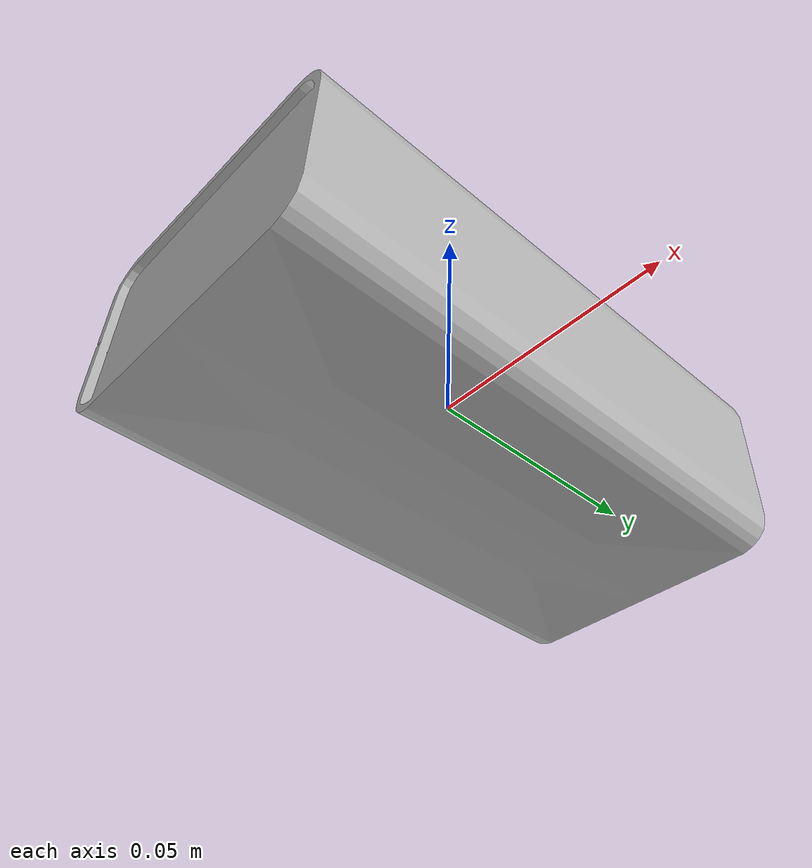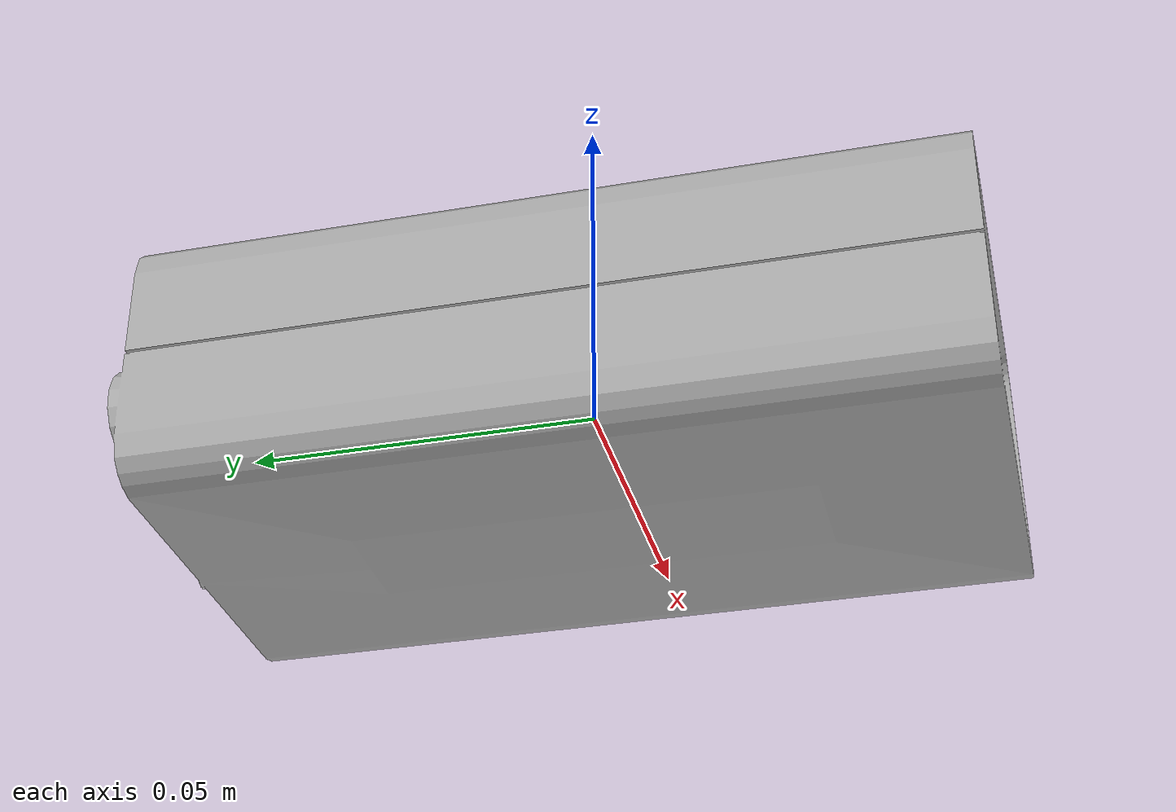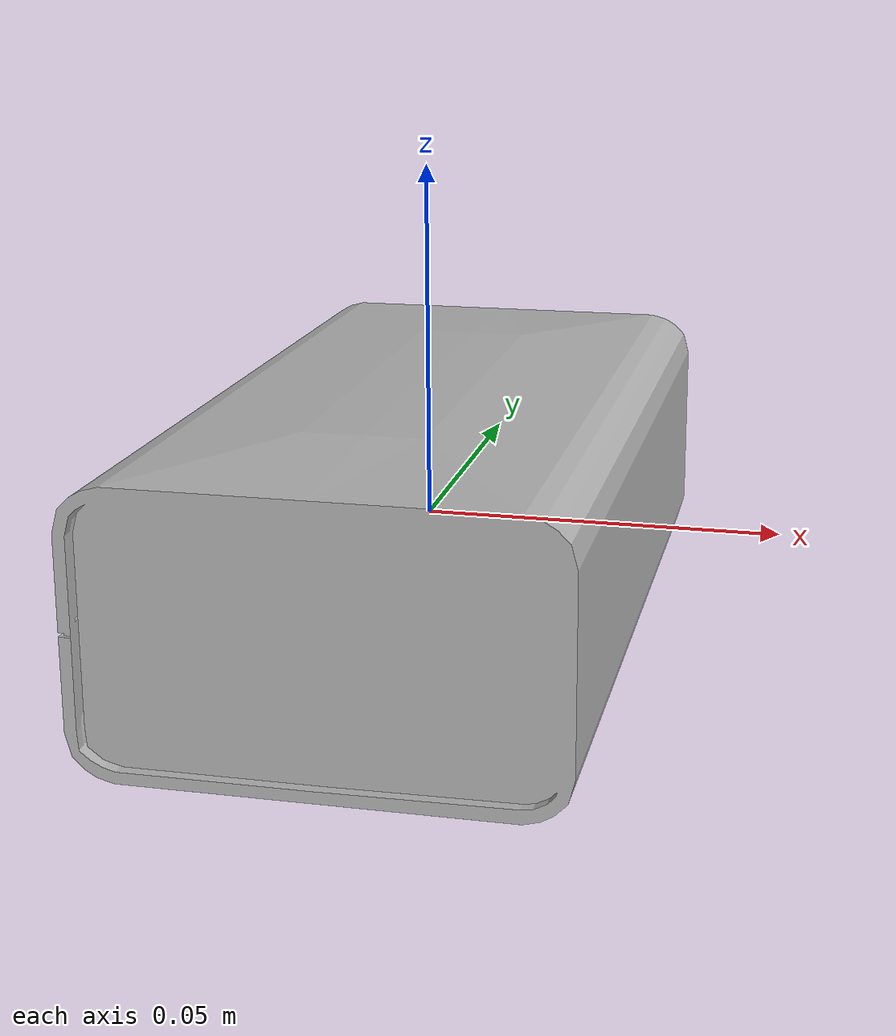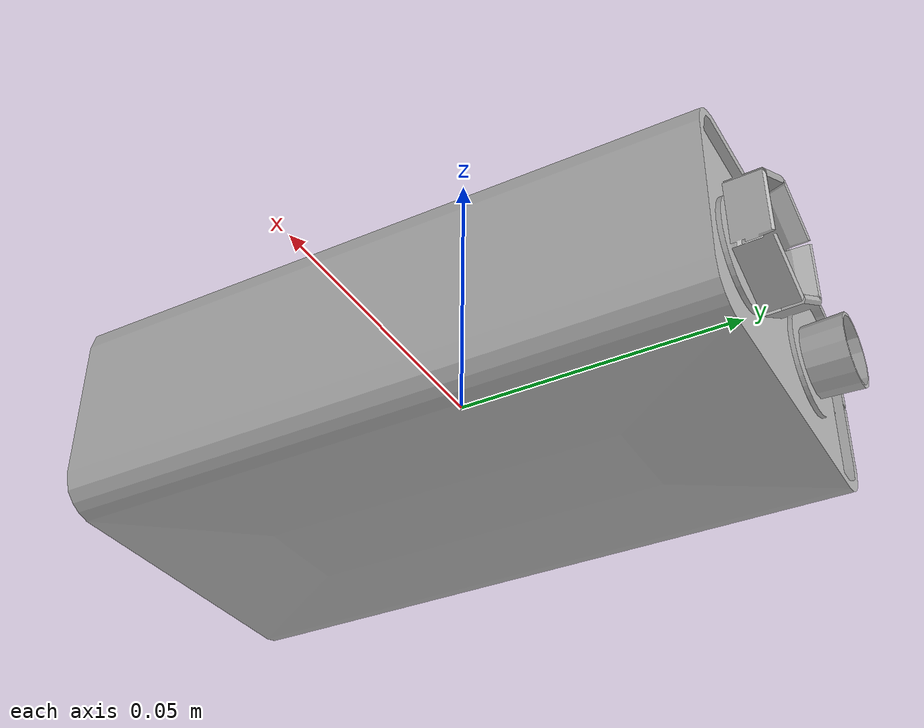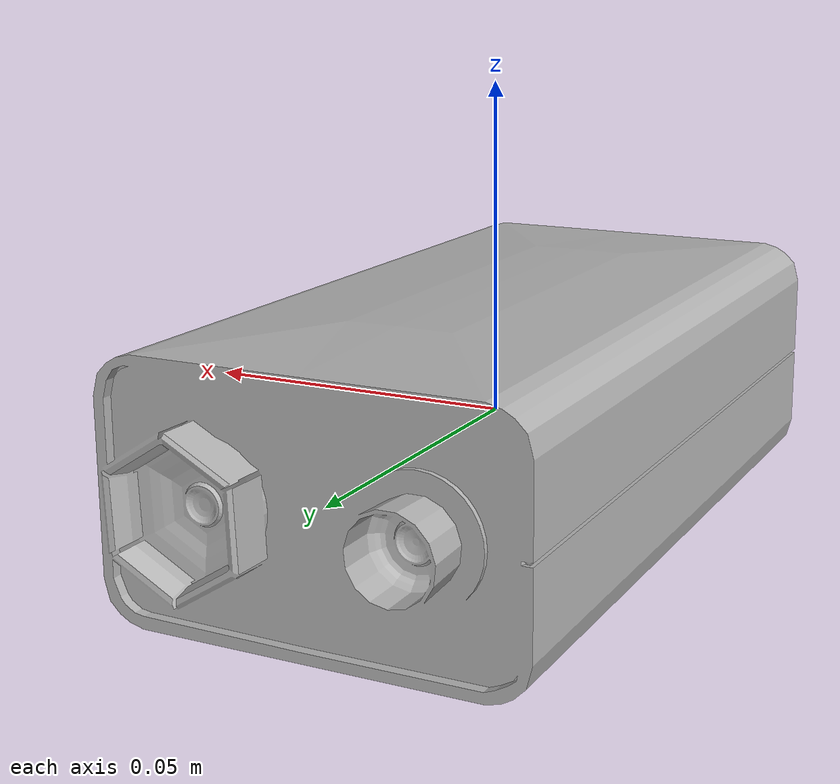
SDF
<?xml version="1.0"?>
<sdf version="1.5">
  <model name="battery_9v_leader">
    <static>false</static>

    <pose>0 0 0  0 0 0</pose>

    <link name="link">
      <pose>0 0 0 0 0 0</pose>

      <visual name="visual">
        <geometry>
          <mesh>
            <uri>model://battery_9v_leader/meshes/Untitled.dae</uri>
            <scale>0.025 0.025 0.025</scale>
          </mesh>
        </geometry>
      </visual>

      <collision name="collision">
        <geometry>
          <mesh>
            <uri>model://battery_9v_leader/meshes/Untitled.dae</uri>
            <scale>0.025 0.025 0.025</scale>
          </mesh>
        </geometry>
      </collision>

      <inertial>
        <mass>0.01</mass>
        <inertia>
          <ixx>0.000010052921019801413</ixx>
          <iyy>0.000002573134734131675</iyy>
          <izz>0.00001141102502635234</izz>
        </inertia>
      </inertial>
    </link>
  </model>
</sdf>
